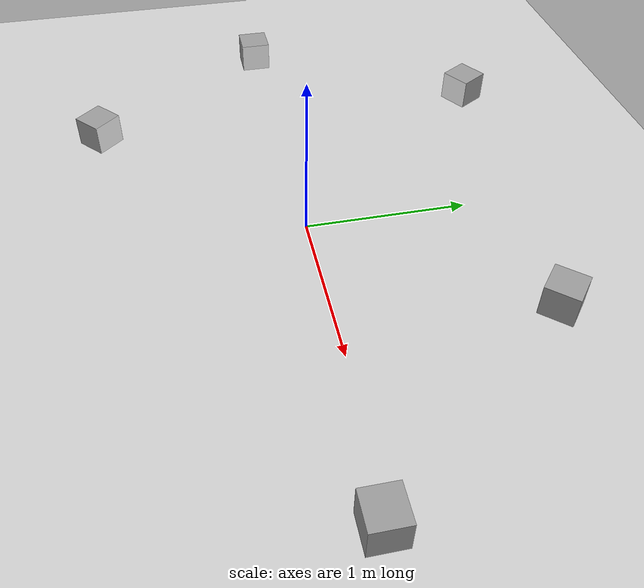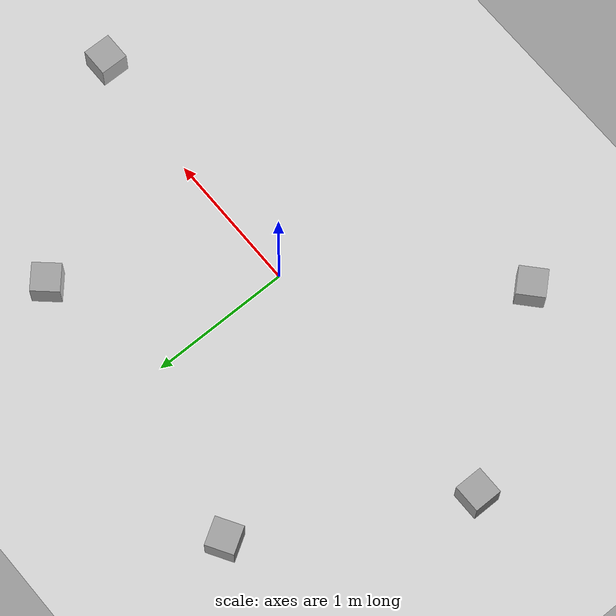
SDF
<sdf version="1.7">
 <world name="default">
  <light name="sun" type="directional">
   <pose>0 0 10 0 -0 0</pose>
   <diffuse>0.8 0.8 0.8 1</diffuse>
   <specular>0.2 0.2 0.2 1</specular>
   <attenuation>
    <range>1000</range>
    <constant>0.9</constant>
    <linear>0.01</linear>
    <quadratic>0.001</quadratic>
   </attenuation>
   <direction>-0.5 0.1 -0.9</direction>
   <spot><inner_angle>0</inner_angle><outer_angle>0</outer_angle><falloff>0</falloff></spot>
  </light>
  <model name="ground_plane">
   <static>1</static>
   <link name="link">
    <collision name="collision">
     <geometry><plane><normal>0 0 1</normal><size>100 100</size></plane></geometry>
     <surface>
      <contact><collide_bitmask>65535</collide_bitmask></contact>
      <friction><ode><mu>100</mu><mu2>50</mu2></ode></friction>
     </surface>
    </collision>
    <visual name="visual">
     <cast_shadows>0</cast_shadows>
     <geometry><plane><normal>0 0 1</normal><size>100 100</size></plane></geometry>
     <material>
      <script><uri>file://media/materials/scripts/gazebo.material</uri><name>Gazebo/Grey</name></script>
     </material>
    </visual>
   </link>
  </model>
  <gravity>0 0 -9.8</gravity>
  <magnetic_field>6e-06 2.3e-05 -4.2e-05</magnetic_field>
  <atmosphere type="adiabatic"/>
  <physics type="ode">
   <max_step_size>0.001</max_step_size>
   <real_time_factor>1</real_time_factor>
   <real_time_update_rate>1000</real_time_update_rate>
  </physics>
  <scene><ambient>0.4 0.4 0.4 1</ambient><background>0.7 0.7 0.7 1</background><shadows>1</shadows></scene>
  <audio><device>default</device></audio>
  <spherical_coordinates>
   <surface_model>EARTH_WGS84</surface_model>
   <latitude_deg>0</latitude_deg>
   <longitude_deg>0</longitude_deg>
   <elevation>0</elevation>
   <heading_deg>0</heading_deg>
  </spherical_coordinates>
  <model name="marker30_box">
   <link name="marker">
    <inertial>
     <mass>0.1</mass>
     <inertia><ixx>0</ixx><ixy>0</ixy><ixz>0</ixz><iyy>0</iyy><iyz>0</iyz><izz>0</izz></inertia>
    </inertial>
    <self_collide>1</self_collide>
    <pose>-0.76428 -0.101106 0.120004 -0.015494 1.56996 -0.015507</pose>
    <visual name="visual">
     <geometry><box><size>0.2 0.2 0.001</size></box></geometry>
     <material>
      <script>
       <uri>model://marker30/material/scripts</uri>
       <uri>model://marker30/material/textures</uri>
       <name>Aruco/marker30</name>
      </script>
      <shader type="pixel"><normal_map>__default__</normal_map></shader>
      <emissive>0 0 0 1</emissive>
      <ambient>1 1 1 1</ambient>
      <diffuse>1 1 1 1</diffuse>
      <specular>0 0 0 1</specular>
     </material>
    </visual>
    <collision name="collision">
     <geometry><box><size>0.2 0.2 0.02</size></box></geometry>
     <surface>
      <friction>
       <ode><mu>1</mu><mu2>1</mu2><fdir1>0 0 0</fdir1><slip1>0</slip1><slip2>0</slip2></ode>
       <torsional>
        <coefficient>1</coefficient>
        <patch_radius>0</patch_radius>
        <surface_radius>0</surface_radius>
        <use_patch_radius>1</use_patch_radius>
        <ode><slip>0</slip></ode>
       </torsional>
      </friction>
      <bounce><restitution_coefficient>0</restitution_coefficient><threshold>1e+06</threshold></bounce>
      <contact>
       <collide_without_contact>0</collide_without_contact>
       <collide_without_contact_bitmask>1</collide_without_contact_bitmask>
       <collide_bitmask>1</collide_bitmask>
       <ode>
        <soft_cfm>0</soft_cfm>
        <soft_erp>0.2</soft_erp>
        <kp>1e+13</kp>
        <kd>1</kd>
        <max_vel>0.01</max_vel>
        <min_depth>0</min_depth>
       </ode>
       <bullet>
        <split_impulse>1</split_impulse>
        <split_impulse_penetration_threshold>-0.01</split_impulse_penetration_threshold>
        <soft_cfm>0</soft_cfm>
        <soft_erp>0.2</soft_erp>
        <kp>1e+13</kp>
        <kd>1</kd>
       </bullet>
      </contact>
     </surface>
    </collision>
   </link>
   <link name="link_1">
    <inertial>
     <mass>1</mass>
     <inertia>
      <ixx>0.166667</ixx>
      <ixy>0</ixy>
      <ixz>0</ixz>
      <iyy>0.166667</iyy>
      <iyz>0</iyz>
      <izz>0.166667</izz>
     </inertia>
    </inertial>
    <pose>-0.86428 -0.101106 0.12 -1.3e-05 -4.2e-05 0</pose>
    <visual name="visual">
     <geometry><box><size>0.2 0.2 0.2</size></box></geometry>
     <material>
      <lighting>1</lighting>
      <script><uri>file://media/materials/scripts/gazebo.material</uri><name>Gazebo/Grey</name></script>
      <shader type="pixel"><normal_map>__default__</normal_map></shader>
      <emissive>0 0 0 1</emissive>
      <ambient>0.3 0.3 0.3 1</ambient>
      <diffuse>0.7 0.7 0.7 1</diffuse>
      <specular>0.01 0.01 0.01 1</specular>
     </material>
    </visual>
    <collision name="collision">
     <geometry><box><size>0.2 0.2 0.2</size></box></geometry>
     <surface>
      <friction>
       <ode><mu>1</mu><mu2>1</mu2><fdir1>0 0 0</fdir1><slip1>0</slip1><slip2>0</slip2></ode>
       <torsional>
        <coefficient>1</coefficient>
        <patch_radius>0</patch_radius>
        <surface_radius>0</surface_radius>
        <use_patch_radius>1</use_patch_radius>
        <ode><slip>0</slip></ode>
       </torsional>
      </friction>
      <bounce><restitution_coefficient>0</restitution_coefficient><threshold>1e+06</threshold></bounce>
      <contact>
       <collide_without_contact>0</collide_without_contact>
       <collide_without_contact_bitmask>1</collide_without_contact_bitmask>
       <collide_bitmask>1</collide_bitmask>
       <ode>
        <soft_cfm>0</soft_cfm>
        <soft_erp>0.2</soft_erp>
        <kp>1e+13</kp>
        <kd>1</kd>
        <max_vel>0.01</max_vel>
        <min_depth>0</min_depth>
       </ode>
       <bullet>
        <split_impulse>1</split_impulse>
        <split_impulse_penetration_threshold>-0.01</split_impulse_penetration_threshold>
        <soft_cfm>0</soft_cfm>
        <soft_erp>0.2</soft_erp>
        <kp>1e+13</kp>
        <kd>1</kd>
       </bullet>
      </contact>
     </surface>
    </collision>
   </link>
   <joint name="link_1_JOINT_3" type="fixed">
    <parent>link_1</parent>
    <child>marker</child>
    <physics>
     <ode><limit><cfm>0</cfm><erp>0.2</erp></limit><suspension><cfm>0</cfm><erp>0.2</erp></suspension></ode>
    </physics>
   </joint>
   <static>0</static>
   <pose>-1.09624 0.084556 -0.020008 1.7e-05 1.8e-05 -0.000176</pose>
  </model>
  <model name="marker31_box">
   <link name="marker">
    <inertial>
     <mass>0.1</mass>
     <inertia><ixx>0</ixx><ixy>0</ixy><ixz>0</ixz><iyy>0</iyy><iyz>0</iyz><izz>0</izz></inertia>
    </inertial>
    <self_collide>1</self_collide>
    <pose>-0.76428 -0.101106 0.120004 -0.015494 1.56996 -0.015507</pose>
    <visual name="visual">
     <geometry><box><size>0.2 0.2 0.001</size></box></geometry>
     <material>
      <script>
       <uri>model://marker31/material/scripts</uri>
       <uri>model://marker31/material/textures</uri>
       <name>Aruco/marker31</name>
      </script>
      <shader type="pixel"><normal_map>__default__</normal_map></shader>
      <emissive>0 0 0 1</emissive>
      <ambient>1 1 1 1</ambient>
      <diffuse>1 1 1 1</diffuse>
      <specular>0 0 0 1</specular>
     </material>
    </visual>
    <collision name="collision">
     <geometry><box><size>0.2 0.2 0.02</size></box></geometry>
     <surface>
      <friction>
       <ode><mu>1</mu><mu2>1</mu2><fdir1>0 0 0</fdir1><slip1>0</slip1><slip2>0</slip2></ode>
       <torsional>
        <coefficient>1</coefficient>
        <patch_radius>0</patch_radius>
        <surface_radius>0</surface_radius>
        <use_patch_radius>1</use_patch_radius>
        <ode><slip>0</slip></ode>
       </torsional>
      </friction>
      <bounce><restitution_coefficient>0</restitution_coefficient><threshold>1e+06</threshold></bounce>
      <contact>
       <collide_without_contact>0</collide_without_contact>
       <collide_without_contact_bitmask>1</collide_without_contact_bitmask>
       <collide_bitmask>1</collide_bitmask>
       <ode>
        <soft_cfm>0</soft_cfm>
        <soft_erp>0.2</soft_erp>
        <kp>1e+13</kp>
        <kd>1</kd>
        <max_vel>0.01</max_vel>
        <min_depth>0</min_depth>
       </ode>
       <bullet>
        <split_impulse>1</split_impulse>
        <split_impulse_penetration_threshold>-0.01</split_impulse_penetration_threshold>
        <soft_cfm>0</soft_cfm>
        <soft_erp>0.2</soft_erp>
        <kp>1e+13</kp>
        <kd>1</kd>
       </bullet>
      </contact>
     </surface>
    </collision>
   </link>
   <link name="link_1">
    <inertial>
     <mass>1</mass>
     <inertia>
      <ixx>0.166667</ixx>
      <ixy>0</ixy>
      <ixz>0</ixz>
      <iyy>0.166667</iyy>
      <iyz>0</iyz>
      <izz>0.166667</izz>
     </inertia>
    </inertial>
    <pose>-0.86428 -0.101106 0.12 -1.3e-05 -4.2e-05 0</pose>
    <visual name="visual">
     <geometry><box><size>0.2 0.2 0.2</size></box></geometry>
     <material>
      <lighting>1</lighting>
      <script><uri>file://media/materials/scripts/gazebo.material</uri><name>Gazebo/Grey</name></script>
      <shader type="pixel"><normal_map>__default__</normal_map></shader>
      <emissive>0 0 0 1</emissive>
      <ambient>0.3 0.3 0.3 1</ambient>
      <diffuse>0.7 0.7 0.7 1</diffuse>
      <specular>0.01 0.01 0.01 1</specular>
     </material>
    </visual>
    <collision name="collision">
     <geometry><box><size>0.2 0.2 0.2</size></box></geometry>
     <surface>
      <friction>
       <ode><mu>1</mu><mu2>1</mu2><fdir1>0 0 0</fdir1><slip1>0</slip1><slip2>0</slip2></ode>
       <torsional>
        <coefficient>1</coefficient>
        <patch_radius>0</patch_radius>
        <surface_radius>0</surface_radius>
        <use_patch_radius>1</use_patch_radius>
        <ode><slip>0</slip></ode>
       </torsional>
      </friction>
      <bounce><restitution_coefficient>0</restitution_coefficient><threshold>1e+06</threshold></bounce>
      <contact>
       <collide_without_contact>0</collide_without_contact>
       <collide_without_contact_bitmask>1</collide_without_contact_bitmask>
       <collide_bitmask>1</collide_bitmask>
       <ode>
        <soft_cfm>0</soft_cfm>
        <soft_erp>0.2</soft_erp>
        <kp>1e+13</kp>
        <kd>1</kd>
        <max_vel>0.01</max_vel>
        <min_depth>0</min_depth>
       </ode>
       <bullet>
        <split_impulse>1</split_impulse>
        <split_impulse_penetration_threshold>-0.01</split_impulse_penetration_threshold>
        <soft_cfm>0</soft_cfm>
        <soft_erp>0.2</soft_erp>
        <kp>1e+13</kp>
        <kd>1</kd>
       </bullet>
      </contact>
     </surface>
    </collision>
   </link>
   <joint name="link_1_JOINT_3" type="fixed">
    <parent>link_1</parent>
    <child>marker</child>
    <physics>
     <ode><limit><cfm>0</cfm><erp>0.2</erp></limit><suspension><cfm>0</cfm><erp>0.2</erp></suspension></ode>
    </physics>
   </joint>
   <static>0</static>
   <pose>-0.557861 -0.548071 -0.020007 1.6e-05 1.8e-05 0.738296</pose>
  </model>
  <model name="marker32_box">
   <link name="marker">
    <inertial>
     <mass>0.1</mass>
     <inertia><ixx>0</ixx><ixy>0</ixy><ixz>0</ixz><iyy>0</iyy><iyz>0</iyz><izz>0</izz></inertia>
    </inertial>
    <self_collide>1</self_collide>
    <pose>-0.76428 -0.101106 0.120004 -0.015494 1.56996 -0.015507</pose>
    <visual name="visual">
     <geometry><box><size>0.2 0.2 0.001</size></box></geometry>
     <material>
      <script>
       <uri>model://marker32/material/scripts</uri>
       <uri>model://marker32/material/textures</uri>
       <name>Aruco/marker32</name>
      </script>
      <shader type="pixel"><normal_map>__default__</normal_map></shader>
      <emissive>0 0 0 1</emissive>
      <ambient>1 1 1 1</ambient>
      <diffuse>1 1 1 1</diffuse>
      <specular>0 0 0 1</specular>
     </material>
    </visual>
    <collision name="collision">
     <geometry><box><size>0.2 0.2 0.02</size></box></geometry>
     <surface>
      <friction>
       <ode><mu>1</mu><mu2>1</mu2><fdir1>0 0 0</fdir1><slip1>0</slip1><slip2>0</slip2></ode>
       <torsional>
        <coefficient>1</coefficient>
        <patch_radius>0</patch_radius>
        <surface_radius>0</surface_radius>
        <use_patch_radius>1</use_patch_radius>
        <ode><slip>0</slip></ode>
       </torsional>
      </friction>
      <bounce><restitution_coefficient>0</restitution_coefficient><threshold>1e+06</threshold></bounce>
      <contact>
       <collide_without_contact>0</collide_without_contact>
       <collide_without_contact_bitmask>1</collide_without_contact_bitmask>
       <collide_bitmask>1</collide_bitmask>
       <ode>
        <soft_cfm>0</soft_cfm>
        <soft_erp>0.2</soft_erp>
        <kp>1e+13</kp>
        <kd>1</kd>
        <max_vel>0.01</max_vel>
        <min_depth>0</min_depth>
       </ode>
       <bullet>
        <split_impulse>1</split_impulse>
        <split_impulse_penetration_threshold>-0.01</split_impulse_penetration_threshold>
        <soft_cfm>0</soft_cfm>
        <soft_erp>0.2</soft_erp>
        <kp>1e+13</kp>
        <kd>1</kd>
       </bullet>
      </contact>
     </surface>
    </collision>
   </link>
   <link name="link_1">
    <inertial>
     <mass>1</mass>
     <inertia>
      <ixx>0.166667</ixx>
      <ixy>0</ixy>
      <ixz>0</ixz>
      <iyy>0.166667</iyy>
      <iyz>0</iyz>
      <izz>0.166667</izz>
     </inertia>
    </inertial>
    <pose>-0.86428 -0.101106 0.12 -1.3e-05 -4.2e-05 0</pose>
    <visual name="visual">
     <geometry><box><size>0.2 0.2 0.2</size></box></geometry>
     <material>
      <lighting>1</lighting>
      <script><uri>file://media/materials/scripts/gazebo.material</uri><name>Gazebo/Grey</name></script>
      <shader type="pixel"><normal_map>__default__</normal_map></shader>
      <emissive>0 0 0 1</emissive>
      <ambient>0.3 0.3 0.3 1</ambient>
      <diffuse>0.7 0.7 0.7 1</diffuse>
      <specular>0.01 0.01 0.01 1</specular>
     </material>
    </visual>
    <collision name="collision">
     <geometry><box><size>0.2 0.2 0.2</size></box></geometry>
     <surface>
      <friction>
       <ode><mu>1</mu><mu2>1</mu2><fdir1>0 0 0</fdir1><slip1>0</slip1><slip2>0</slip2></ode>
       <torsional>
        <coefficient>1</coefficient>
        <patch_radius>0</patch_radius>
        <surface_radius>0</surface_radius>
        <use_patch_radius>1</use_patch_radius>
        <ode><slip>0</slip></ode>
       </torsional>
      </friction>
      <bounce><restitution_coefficient>0</restitution_coefficient><threshold>1e+06</threshold></bounce>
      <contact>
       <collide_without_contact>0</collide_without_contact>
       <collide_without_contact_bitmask>1</collide_without_contact_bitmask>
       <collide_bitmask>1</collide_bitmask>
       <ode>
        <soft_cfm>0</soft_cfm>
        <soft_erp>0.2</soft_erp>
        <kp>1e+13</kp>
        <kd>1</kd>
        <max_vel>0.01</max_vel>
        <min_depth>0</min_depth>
       </ode>
       <bullet>
        <split_impulse>1</split_impulse>
        <split_impulse_penetration_threshold>-0.01</split_impulse_penetration_threshold>
        <soft_cfm>0</soft_cfm>
        <soft_erp>0.2</soft_erp>
        <kp>1e+13</kp>
        <kd>1</kd>
       </bullet>
      </contact>
     </surface>
    </collision>
   </link>
   <joint name="link_1_JOINT_3" type="fixed">
    <parent>link_1</parent>
    <child>marker</child>
    <physics>
     <ode><limit><cfm>0</cfm><erp>0.2</erp></limit><suspension><cfm>0</cfm><erp>0.2</erp></suspension></ode>
    </physics>
   </joint>
   <static>0</static>
   <pose>1.05148 -0.161464 -0.020009 1.2e-05 1.8e-05 3.13631</pose>
  </model>
  <model name="marker33_box">
   <link name="marker">
    <inertial>
     <mass>0.1</mass>
     <inertia><ixx>0</ixx><ixy>0</ixy><ixz>0</ixz><iyy>0</iyy><iyz>0</iyz><izz>0</izz></inertia>
    </inertial>
    <self_collide>1</self_collide>
    <pose>-0.76428 -0.101106 0.120004 -0.015494 1.56996 -0.015507</pose>
    <visual name="visual">
     <geometry><box><size>0.2 0.2 0.001</size></box></geometry>
     <material>
      <script>
       <uri>model://marker33/material/scripts</uri>
       <uri>model://marker33/material/textures</uri>
       <name>Aruco/marker33</name>
      </script>
      <shader type="pixel"><normal_map>__default__</normal_map></shader>
      <emissive>0 0 0 1</emissive>
      <ambient>1 1 1 1</ambient>
      <diffuse>1 1 1 1</diffuse>
      <specular>0 0 0 1</specular>
     </material>
    </visual>
    <collision name="collision">
     <geometry><box><size>0.2 0.2 0.02</size></box></geometry>
     <surface>
      <friction>
       <ode><mu>1</mu><mu2>1</mu2><fdir1>0 0 0</fdir1><slip1>0</slip1><slip2>0</slip2></ode>
       <torsional>
        <coefficient>1</coefficient>
        <patch_radius>0</patch_radius>
        <surface_radius>0</surface_radius>
        <use_patch_radius>1</use_patch_radius>
        <ode><slip>0</slip></ode>
       </torsional>
      </friction>
      <bounce><restitution_coefficient>0</restitution_coefficient><threshold>1e+06</threshold></bounce>
      <contact>
       <collide_without_contact>0</collide_without_contact>
       <collide_without_contact_bitmask>1</collide_without_contact_bitmask>
       <collide_bitmask>1</collide_bitmask>
       <ode>
        <soft_cfm>0</soft_cfm>
        <soft_erp>0.2</soft_erp>
        <kp>1e+13</kp>
        <kd>1</kd>
        <max_vel>0.01</max_vel>
        <min_depth>0</min_depth>
       </ode>
       <bullet>
        <split_impulse>1</split_impulse>
        <split_impulse_penetration_threshold>-0.01</split_impulse_penetration_threshold>
        <soft_cfm>0</soft_cfm>
        <soft_erp>0.2</soft_erp>
        <kp>1e+13</kp>
        <kd>1</kd>
       </bullet>
      </contact>
     </surface>
    </collision>
   </link>
   <link name="link_1">
    <inertial>
     <mass>1</mass>
     <inertia>
      <ixx>0.166667</ixx>
      <ixy>0</ixy>
      <ixz>0</ixz>
      <iyy>0.166667</iyy>
      <iyz>0</iyz>
      <izz>0.166667</izz>
     </inertia>
    </inertial>
    <pose>-0.86428 -0.101106 0.12 -1.3e-05 -4.2e-05 0</pose>
    <visual name="visual">
     <geometry><box><size>0.2 0.2 0.2</size></box></geometry>
     <material>
      <lighting>1</lighting>
      <script><uri>file://media/materials/scripts/gazebo.material</uri><name>Gazebo/Grey</name></script>
      <shader type="pixel"><normal_map>__default__</normal_map></shader>
      <emissive>0 0 0 1</emissive>
      <ambient>0.3 0.3 0.3 1</ambient>
      <diffuse>0.7 0.7 0.7 1</diffuse>
      <specular>0.01 0.01 0.01 1</specular>
     </material>
    </visual>
    <collision name="collision">
     <geometry><box><size>0.2 0.2 0.2</size></box></geometry>
     <surface>
      <friction>
       <ode><mu>1</mu><mu2>1</mu2><fdir1>0 0 0</fdir1><slip1>0</slip1><slip2>0</slip2></ode>
       <torsional>
        <coefficient>1</coefficient>
        <patch_radius>0</patch_radius>
        <surface_radius>0</surface_radius>
        <use_patch_radius>1</use_patch_radius>
        <ode><slip>0</slip></ode>
       </torsional>
      </friction>
      <bounce><restitution_coefficient>0</restitution_coefficient><threshold>1e+06</threshold></bounce>
      <contact>
       <collide_without_contact>0</collide_without_contact>
       <collide_without_contact_bitmask>1</collide_without_contact_bitmask>
       <collide_bitmask>1</collide_bitmask>
       <ode>
        <soft_cfm>0</soft_cfm>
        <soft_erp>0.2</soft_erp>
        <kp>1e+13</kp>
        <kd>1</kd>
        <max_vel>0.01</max_vel>
        <min_depth>0</min_depth>
       </ode>
       <bullet>
        <split_impulse>1</split_impulse>
        <split_impulse_penetration_threshold>-0.01</split_impulse_penetration_threshold>
        <soft_cfm>0</soft_cfm>
        <soft_erp>0.2</soft_erp>
        <kp>1e+13</kp>
        <kd>1</kd>
       </bullet>
      </contact>
     </surface>
    </collision>
   </link>
   <joint name="link_1_JOINT_3" type="fixed">
    <parent>link_1</parent>
    <child>marker</child>
    <physics>
     <ode><limit><cfm>0</cfm><erp>0.2</erp></limit><suspension><cfm>0</cfm><erp>0.2</erp></suspension></ode>
    </physics>
   </joint>
   <static>0</static>
   <pose>0.409767 0.506384 -0.020009 1.2e-05 1.9e-05 -2.29984</pose>
  </model>
  <model name="marker34_box">
   <link name="marker">
    <inertial>
     <mass>0.1</mass>
     <inertia><ixx>0</ixx><ixy>0</ixy><ixz>0</ixz><iyy>0</iyy><iyz>0</iyz><izz>0</izz></inertia>
    </inertial>
    <self_collide>1</self_collide>
    <pose>-0.76428 -0.101106 0.120004 -0.015494 1.56996 -0.015507</pose>
    <visual name="visual">
     <geometry><box><size>0.2 0.2 0.001</size></box></geometry>
     <material>
      <script>
       <uri>model://marker34/material/scripts</uri>
       <uri>model://marker34/material/textures</uri>
       <name>Aruco/marker34</name>
      </script>
      <shader type="pixel"><normal_map>__default__</normal_map></shader>
      <emissive>0 0 0 1</emissive>
      <ambient>1 1 1 1</ambient>
      <diffuse>1 1 1 1</diffuse>
      <specular>0 0 0 1</specular>
     </material>
    </visual>
    <collision name="collision">
     <geometry><box><size>0.2 0.2 0.02</size></box></geometry>
     <surface>
      <friction>
       <ode><mu>1</mu><mu2>1</mu2><fdir1>0 0 0</fdir1><slip1>0</slip1><slip2>0</slip2></ode>
       <torsional>
        <coefficient>1</coefficient>
        <patch_radius>0</patch_radius>
        <surface_radius>0</surface_radius>
        <use_patch_radius>1</use_patch_radius>
        <ode><slip>0</slip></ode>
       </torsional>
      </friction>
      <bounce><restitution_coefficient>0</restitution_coefficient><threshold>1e+06</threshold></bounce>
      <contact>
       <collide_without_contact>0</collide_without_contact>
       <collide_without_contact_bitmask>1</collide_without_contact_bitmask>
       <collide_bitmask>1</collide_bitmask>
       <ode>
        <soft_cfm>0</soft_cfm>
        <soft_erp>0.2</soft_erp>
        <kp>1e+13</kp>
        <kd>1</kd>
        <max_vel>0.01</max_vel>
        <min_depth>0</min_depth>
       </ode>
       <bullet>
        <split_impulse>1</split_impulse>
        <split_impulse_penetration_threshold>-0.01</split_impulse_penetration_threshold>
        <soft_cfm>0</soft_cfm>
        <soft_erp>0.2</soft_erp>
        <kp>1e+13</kp>
        <kd>1</kd>
       </bullet>
      </contact>
     </surface>
    </collision>
   </link>
   <link name="link_1">
    <inertial>
     <mass>1</mass>
     <inertia>
      <ixx>0.166667</ixx>
      <ixy>0</ixy>
      <ixz>0</ixz>
      <iyy>0.166667</iyy>
      <iyz>0</iyz>
      <izz>0.166667</izz>
     </inertia>
    </inertial>
    <pose>-0.86428 -0.101106 0.12 -1.3e-05 -4.2e-05 0</pose>
    <visual name="visual">
     <geometry><box><size>0.2 0.2 0.2</size></box></geometry>
     <material>
      <lighting>1</lighting>
      <script><uri>file://media/materials/scripts/gazebo.material</uri><name>Gazebo/Grey</name></script>
      <shader type="pixel"><normal_map>__default__</normal_map></shader>
      <emissive>0 0 0 1</emissive>
      <ambient>0.3 0.3 0.3 1</ambient>
      <diffuse>0.7 0.7 0.7 1</diffuse>
      <specular>0.01 0.01 0.01 1</specular>
     </material>
    </visual>
    <collision name="collision">
     <geometry><box><size>0.2 0.2 0.2</size></box></geometry>
     <surface>
      <friction>
       <ode><mu>1</mu><mu2>1</mu2><fdir1>0 0 0</fdir1><slip1>0</slip1><slip2>0</slip2></ode>
       <torsional>
        <coefficient>1</coefficient>
        <patch_radius>0</patch_radius>
        <surface_radius>0</surface_radius>
        <use_patch_radius>1</use_patch_radius>
        <ode><slip>0</slip></ode>
       </torsional>
      </friction>
      <bounce><restitution_coefficient>0</restitution_coefficient><threshold>1e+06</threshold></bounce>
      <contact>
       <collide_without_contact>0</collide_without_contact>
       <collide_without_contact_bitmask>1</collide_without_contact_bitmask>
       <collide_bitmask>1</collide_bitmask>
       <ode>
        <soft_cfm>0</soft_cfm>
        <soft_erp>0.2</soft_erp>
        <kp>1e+13</kp>
        <kd>1</kd>
        <max_vel>0.01</max_vel>
        <min_depth>0</min_depth>
       </ode>
       <bullet>
        <split_impulse>1</split_impulse>
        <split_impulse_penetration_threshold>-0.01</split_impulse_penetration_threshold>
        <soft_cfm>0</soft_cfm>
        <soft_erp>0.2</soft_erp>
        <kp>1e+13</kp>
        <kd>1</kd>
       </bullet>
      </contact>
     </surface>
    </collision>
   </link>
   <joint name="link_1_JOINT_3" type="fixed">
    <parent>link_1</parent>
    <child>marker</child>
    <physics>
     <ode><limit><cfm>0</cfm><erp>0.2</erp></limit><suspension><cfm>0</cfm><erp>0.2</erp></suspension></ode>
    </physics>
   </joint>
   <static>0</static>
   <pose>-0.638034 0.720918 -0.020008 9e-06 1.8e-05 -1.02794</pose>
  </model>
 </world>
</sdf>
